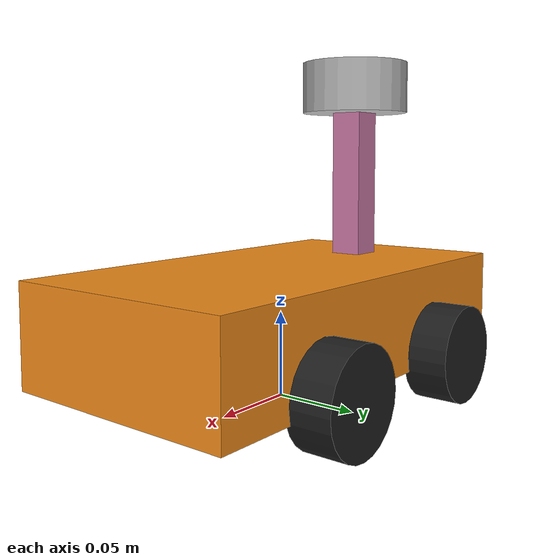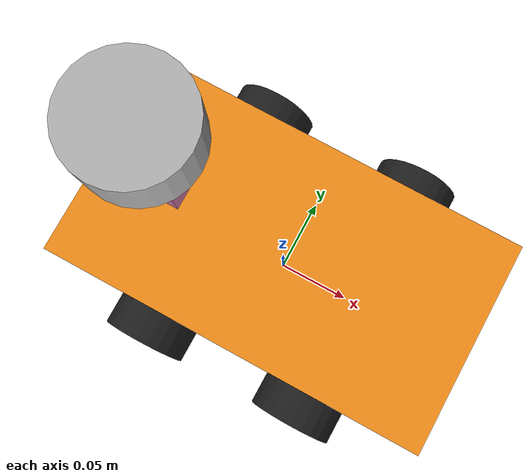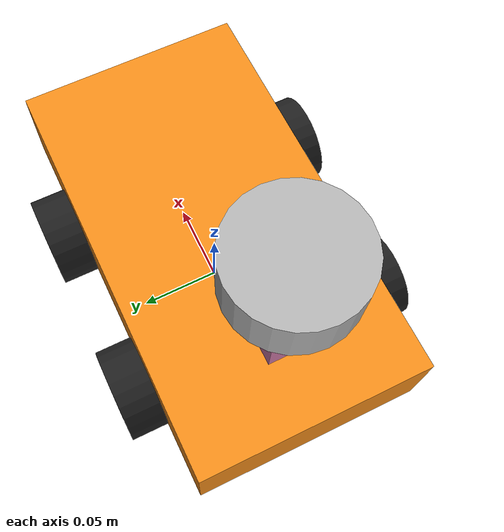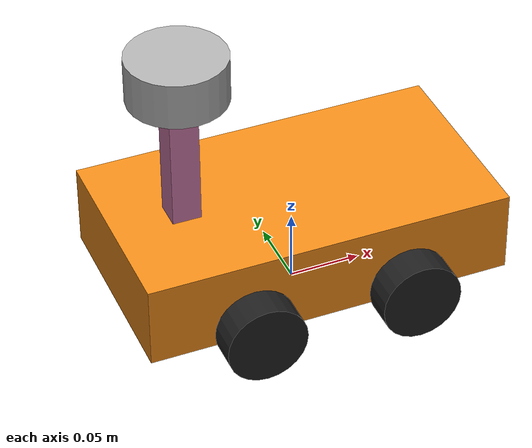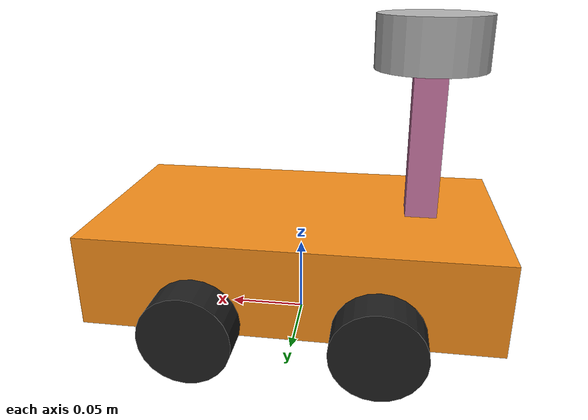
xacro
<?xml version="1.0"?>
<robot xmlns:xacro="http://www.ros.org/wiki/xacro" name="rover0">
  <xacro:arg name="prefix" default="" />

  <xacro:include filename="$(find rover0_description)/urdf/rover0_description.urdf.xacro" />
  <xacro:include filename="$(find rover0_description)/urdf/rover0.materials.xacro" />
  <xacro:include filename="$(find rover0_description)/ros2_control/rover0.ros2_control.xacro" />

  <xacro:call macro="rover0" prefix="$(arg prefix)" />

  <xacro:rover0_ros2_control name="Rover0" prefix="$(arg prefix)">
    <xacro:property name="hardware_system">
      <plugin>rover0_hardware_interface/Rover0HardwareInterface</plugin>
      <param name="serial_port">/dev/serial0</param>
      <param name="encoder_tics_per_revolution">64</param>
      <param name="imu_linear_acceleration_offset_x">-0.04001879692077637</param>
      <param name="imu_linear_acceleration_offset_y">-0.011276155710220337</param>
      <param name="imu_linear_acceleration_offset_z">0.9002845287322998</param>
      <param name="imu_angular_velocity_offset_x">-6.8362923339009285</param>
      <param name="imu_angular_velocity_offset_y">0.2556564286351204</param>
      <param name="imu_angular_velocity_offset_z">0.06320327520370483</param>
    </xacro:property>
  </xacro:rover0_ros2_control>
</robot>

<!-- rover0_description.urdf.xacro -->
<robot xmlns:xacro="http://www.ros.org/wiki/xacro">
   <xacro:include filename="$(find rover0_description)/urdf/rover0_description_common.urdf.xacro" />
   <xacro:include filename="$(find rover0_description)/urdf/rover0_description_lidar.urdf.xacro" />
   <xacro:include filename="$(find rover0_description)/urdf/rover0_description_imu.urdf.xacro" />
   <xacro:include filename="$(find rover0_description)/urdf/rover0_description_camera.urdf.xacro" />
   <xacro:include filename="$(find rover0_description)/urdf/rover0_description_wheel.urdf.xacro" />

   <xacro:property name="base_width" value="0.14" />
   <xacro:property name="base_length" value="0.255" />
   <xacro:property name="base_height" value="0.058" />
   <xacro:property name="base_mass" value="0.3" />

   <xacro:property name="wheel_ygap" value="0.01" />
   <xacro:property name="wheel_x_off" value="0.055" />
   <xacro:property name="wheel_y_off" value="${base_width/2 + wheel_ygap}" />
   <xacro:property name="wheel_z_off" value="0.021" />
   <xacro:property name="lidar_x_off" value="-0.078" />
   <xacro:property name="camera_x_off" value="0.11" />
   <xacro:property name="camera_y_off" value="0.0" />
   <xacro:property name="camera_z_off" value="0.015" />

  <xacro:macro name="rover0" params="prefix">
    <xacro:macro name="base">
        <link name="${prefix}base_link">
          <visual>
            <geometry>
              <box size="${base_length} ${base_width} ${base_height}"/>
            </geometry>
            <material name="orange"/>
          </visual>

          <collision>
            <geometry>
              <box size="${base_length} ${base_width} ${base_height}"/>
            </geometry>
          </collision>

          <xacro:box_inertia m="15" w="${base_width}" d="${base_length}" h="${base_height}"/>
        </link>

        <link name="${prefix}base_footprint" />
        <joint name="${prefix}base_joint" type="fixed">
          <parent link="${prefix}base_footprint" />
          <child link="${prefix}base_link" />
          <origin xyz="0.0 0.0 ${(wheel_radius+wheel_z_off)}" rpy="0 0 0" />
        </joint>
    </xacro:macro>
    <xacro:base/>

    <xacro:wheel prefix="front_left" parent="${prefix}base_link" x_reflect="1" y_reflect="1" x_off="${wheel_x_off}" y_off="${wheel_y_off}" z_off="${wheel_z_off}"/>
    <xacro:wheel prefix="front_right" parent="${prefix}base_link"  x_reflect="1" y_reflect="-1" x_off="${wheel_x_off}" y_off="${wheel_y_off}" z_off="${wheel_z_off}"/>
    <xacro:wheel prefix="rear_left" parent="${prefix}base_link" x_reflect="-1" y_reflect="1" x_off="${wheel_x_off}" y_off="${wheel_y_off}" z_off="${wheel_z_off}"/>
    <xacro:wheel prefix="rear_right" parent="${prefix}base_link" x_reflect="-1" y_reflect="-1" x_off="${wheel_x_off}" y_off="${wheel_y_off}" z_off="${wheel_z_off}"/>
    <xacro:lidar prefix="rover0" parent="${prefix}base_link" base_height="${base_height}" x_off="${lidar_x_off}" />
    <xacro:imu prefix="rover0" parent="${prefix}base_link" x_off="0" y_off="0.0125" z_off="0.008"/>
    <xacro:camera prefix="rover0" parent="${prefix}base_link" x_off="${camera_x_off}" y_off="${camera_y_off}" z_off="${camera_z_off}"/>
  </xacro:macro>
</robot>

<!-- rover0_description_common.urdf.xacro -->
<robot xmlns:xacro="http://www.ros.org/wiki/xacro">
    <xacro:property name="PI" value="3.1415926535897931"/>

    <xacro:macro name="box_inertia" params="m w h d">
      <inertial>
        <origin xyz="0 0 0" rpy="0 0 0"/>
        <mass value="${m}"/>
        <inertia ixx="${(m/12) * (h*h + d*d)}" ixy="0.0" ixz="0.0" iyy="${(m/12) * (w*w + d*d)}" iyz="0.0" izz="${(m/12) * (w*w + h*h)}"/>
      </inertial>
    </xacro:macro>

    <xacro:macro name="cylinder_inertia" params="m r h">
      <inertial>
        <origin xyz="0 0 0" rpy="0 0 0" />
        <mass value="${m}"/>
        <inertia ixx="${(m/12) * (3*r*r + h*h)}" ixy = "0" ixz = "0" iyy="${(m/12) * (3*r*r + h*h)}" iyz = "0" izz="${(m/2) * (r*r)}"/>
      </inertial>
    </xacro:macro>

    <xacro:macro name="sphere_inertia" params="m r">
      <inertial>
        <mass value="${m}"/>
        <inertia ixx="${(2/5) * m * (r*r)}" ixy="0.0" ixz="0.0" iyy="${(2/5) * m * (r*r)}" iyz="0.0" izz="${(2/5) * m * (r*r)}"/>
      </inertial>
    </xacro:macro>
</robot>

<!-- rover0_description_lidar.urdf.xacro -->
<robot xmlns:xacro="http://www.ros.org/wiki/xacro">
    <xacro:include filename="$(find rover0_description)/urdf/rover0_description_common.urdf.xacro" />

    <xacro:property name="mount_height" value="0.092" />
    <xacro:property name="lidar_height" value="0.032" />
    <xacro:property name="lidar_radius" value="0.034" />

    <xacro:macro name="lidar" params="prefix parent base_height x_off">
        <link name="${prefix}_lidar_mount_link">
          <inertial>
            <origin xyz="0 0 0" rpy="0 0 0"/>
            <mass value="0.125"/>
            <inertia ixx="0.001"  ixy="0"  ixz="0" iyy="0.001" iyz="0" izz="0.001" />
          </inertial>

          <collision>
            <origin xyz="0 0 0" rpy="0 0 0"/>
            <geometry>
                <box size="0.02 0.02 ${mount_height}"/>
            </geometry>
          </collision>

          <visual>
            <origin xyz="0 0 0" rpy="0 0 0"/>
            <geometry>
                <box size="0.02 0.02 ${mount_height}"/>
            </geometry>
          </visual>
        </link>

        <link name="${prefix}_lidar_link">
          <inertial>
            <origin xyz="0 0 0" rpy="0 0 0"/>
            <mass value="0.125"/>
            <inertia ixx="0.001"  ixy="0"  ixz="0" iyy="0.001" iyz="0" izz="0.001" />
          </inertial>

          <collision>
            <origin xyz="0 0 0" rpy="0 0 0"/>
            <geometry>
                <cylinder radius="${lidar_radius}" length="${lidar_height}"/>
            </geometry>
          </collision>

          <visual>
            <origin xyz="0 0 0" rpy="0 0 0"/>
            <geometry>
                <cylinder radius="${lidar_radius}" length="${lidar_height}"/>
            </geometry>
          </visual>
        </link>

        <joint name="${prefix}_lidar_mount_joint" type="fixed">
            <parent link="${parent}"/>
            <child link="${prefix}_lidar_mount_link"/>
            <origin xyz="${x_off} 0 ${(base_height + mount_height)/2}" rpy="0 0 0"/>
        </joint>

        <joint name="${prefix}_lidar_joint" type="fixed">
            <parent link="${prefix}_lidar_mount_link"/>
            <child link="${prefix}_lidar_link"/>
            <origin xyz="0 0 ${(mount_height + lidar_height) / 2}" rpy="0 ${radians(180)} 0"/>
        </joint>
    </xacro:macro>
</robot>

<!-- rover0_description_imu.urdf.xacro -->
<robot xmlns:xacro="http://www.ros.org/wiki/xacro">
    <xacro:include filename="$(find rover0_description)/urdf/rover0_description_common.urdf.xacro" />

    <xacro:macro name="imu" params="prefix parent x_off y_off z_off">
        <link name="${prefix}_imu_link">
          <xacro:box_inertia m="0.01" w="0.01" d="0.01" h="0.001" />

          <collision>
            <origin xyz="0 0 0" rpy="0 0 0"/>
            <geometry>
              <box size="0.01 0.01 0.001"/>
            </geometry>
          </collision>

          <visual>
            <origin xyz="0 0 0" rpy="0 0 0"/>
            <geometry>
              <box size="0.01 0.01 0.001"/>
            </geometry>
          </visual>
        </link>

        <joint name="${prefix}_imu_joint" type="fixed">
          <parent link="${parent}"/>
          <child link="${prefix}_imu_link"/>
          <origin xyz="${x_off} ${y_off} ${z_off}" rpy="0 0 0"/> <!-- TODO: update correct value -->
          <axis xyz="0 0 1"/>
        </joint>
    </xacro:macro>
</robot>

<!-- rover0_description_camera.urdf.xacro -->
<robot xmlns:xacro="http://www.ros.org/wiki/xacro" xmlns:gz="http://gazebosim.org/schema">
    <xacro:include filename="$(find rover0_description)/urdf/rover0_description_common.urdf.xacro" />

    <xacro:macro name="camera" params="prefix parent x_off y_off z_off">
        <link name="${prefix}_camera_link">
          <xacro:box_inertia m="0.01" w="0.01" d="0.01" h="0.001" />

          <collision>
            <origin xyz="0 0 0" rpy="0 0 0"/>
            <geometry>
              <box size="0.01 0.01 0.001"/>
            </geometry>
          </collision>

          <visual>
            <origin xyz="0 0 0" rpy="0 0 0"/>
            <geometry>
              <box size="0.01 0.01 0.001"/>
            </geometry>
          </visual>
        </link>

        <joint name="${prefix}_camera_joint" type="fixed">
          <parent link="${parent}"/>
          <child link="${prefix}_camera_link"/>
          <origin xyz="${x_off} ${y_off} ${z_off}"/>
        </joint>
    </xacro:macro>
</robot>

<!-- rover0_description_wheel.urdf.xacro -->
<robot xmlns:xacro="http://www.ros.org/wiki/xacro">
    <xacro:include filename="$(find rover0_description)/urdf/rover0_description_common.urdf.xacro" />

    <xacro:property name="wheel_mass" value="0.3" />
    <xacro:property name="wheel_radius" value="0.028" />
    <xacro:property name="wheel_width" value="0.025" />
    <xacro:property name="PI" value="3.1415926535897931"/>

    <xacro:macro name="wheel" params="prefix parent x_reflect y_reflect x_off y_off z_off">
      <link name="${prefix}_wheel_link">
        <xacro:cylinder_inertia m="0.5" r="${wheel_radius}" h="${wheel_width}"/>

        <collision>
          <origin xyz="0 0 0" rpy="0 0 0"/>
          <geometry>
            <sphere radius="${wheel_radius}"/>
          </geometry>
        </collision>

        <visual>
          <origin xyz="0 0 0" rpy="0 0 0"/>
          <geometry>
            <cylinder radius="${wheel_radius}" length="${wheel_width}"/>
          </geometry>
          <material name="black" />
        </visual>
      </link>

      <joint name="${prefix}_wheel_joint" type="continuous">
        <parent link="${parent}" />
        <child link="${prefix}_wheel_link" />
        <origin xyz="${x_reflect*x_off} ${y_reflect * y_off} ${-z_off}" rpy="-${pi/2} 0 0" />
        <axis xyz="0 0 1" />
      </joint>
    </xacro:macro>
</robot>
